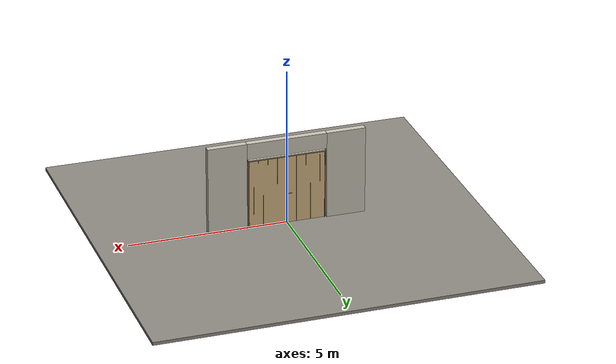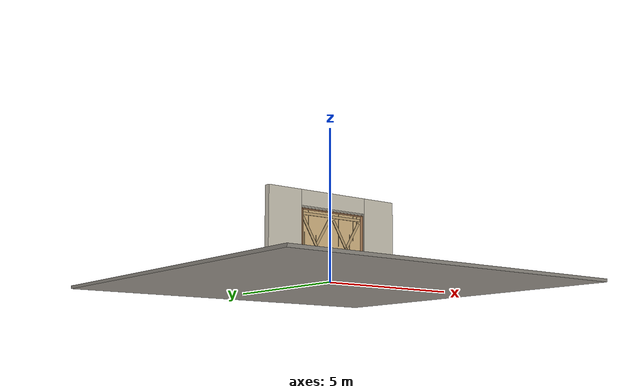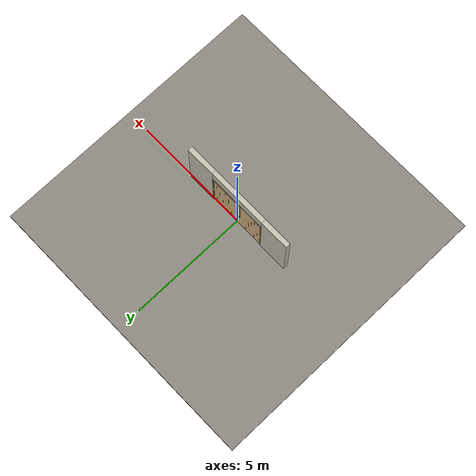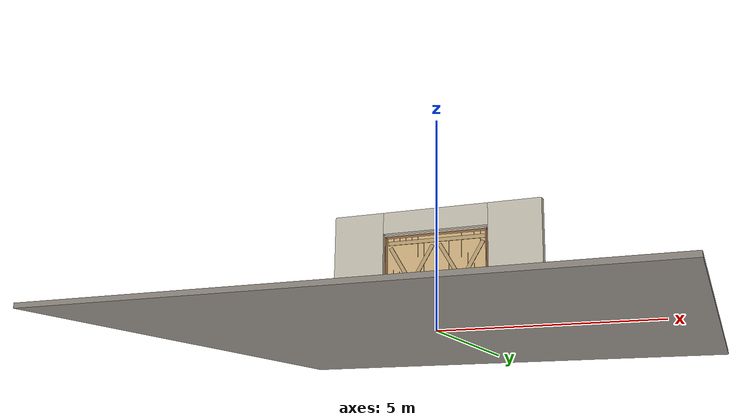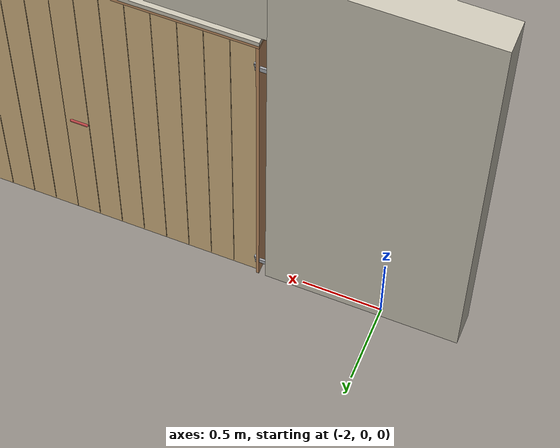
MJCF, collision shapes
<?xml version="1.0" ?>
<mujoco model="db0918_swing_double_full">
  <compiler angle="radian" meshdir="../../hardware" texturedir="../../textures" autolimits="true" inertiafromgeom="false"/>
  <option timestep="0.002" integrator="implicitfast" cone="elliptic" impratio="10" noslip_iterations="3">
    <flag multiccd="enable"/>
  </option>
  <size memory="16M"/>
  <default>
    <geom condim="4" solref="0.005 1" solimp="0.95 0.99 0.001"/>
    <joint solreflimit="0.005 1" solimplimit="0.95 0.99 0.001"/>
    <tendon solreflimit="0.005 1"/>
    <equality solref="0.002 1"/>
  </default>
  <visual>
    <headlight ambient="0.4 0.4 0.4" diffuse="0.7 0.7 0.7" specular="0.2 0.2 0.2"/>
    <quality shadowsize="4096"/>
    <map znear="0.01" zfar="60"/>
  </visual>
  <asset>
    <mesh name="ring_cc5c941a8a" file="ring_cc5c941a8a.obj"/>
    <mesh name="strap_hinge_78d1bbb966" file="strap_hinge_78d1bbb966.obj"/>
    <material name="mat_floor" rgba="0.55 0.53 0.5 1" specular="0.2" shininess="0.15" reflectance="0"/>
    <material name="mat_wall" rgba="0.78 0.76 0.7 1" specular="0.2" shininess="0.1" reflectance="0"/>
    <material name="mat_leaf_a" rgba="0.82 0.7 0.5 1" specular="0.2" shininess="0.45" reflectance="0"/>
    <material name="mat_leaf_a_brace" rgba="0.738 0.63 0.45 1" specular="0.2" shininess="0.2" reflectance="0"/>
    <material name="mat_hinge" rgba="0.65 0.66 0.68 1" specular="0.74" shininess="0.5" reflectance="0.36"/>
    <material name="mat_op_wrought_iron" rgba="0.08 0.08 0.09 1" specular="0.56" shininess="0.25" reflectance="0.24"/>
    <material name="mat_leaf_b" rgba="0.82 0.7 0.5 1" specular="0.2" shininess="0.45" reflectance="0"/>
    <material name="mat_leaf_b_brace" rgba="0.738 0.63 0.45 1" specular="0.2" shininess="0.2" reflectance="0"/>
    <material name="mat_frame" rgba="0.75 0.55 0.38 1" specular="0.2" shininess="0.45" reflectance="0"/>
    <texture name="skybox" type="skybox" builtin="gradient" rgb1="0.6 0.7 0.85" rgb2="0.9 0.92 0.95" width="256" height="256"/>
  </asset>
  <worldbody>
    <light name="sun" pos="1.5 -2.5 4" dir="-0.3 0.5 -0.8" directional="true" diffuse="0.8 0.8 0.8" specular="0.3 0.3 0.3" castshadow="true"/>
    <light name="fill" pos="-1.5 2.5 3" dir="0.3 -0.5 -0.7" directional="true" diffuse="0.35 0.35 0.4" castshadow="false"/>
    <camera name="robot_view" pos="0 -2.941438 1.913863" xyaxes="1 0 0 0 0.26963 0.962964" fovy="52"/>
    <camera name="far_view" pos="0 2.825438 1.913863" xyaxes="-1 0 0 0 -0.26963 0.962964" fovy="52"/>
    <camera name="iso" pos="-2.191412 -2.480088 2.375212" xyaxes="0.741536 -0.670913 0 0.242917 0.268487 0.932151" fovy="46"/>
    <camera name="detail_handle" pos="0.0735 -0.854 1.27" xyaxes="0.97561 0.219512 0 -0.070934 0.315262 0.94635" fovy="38"/>
    <geom name="floor" type="box" size="6 6 0.05" pos="0 0 -0.05" material="mat_floor" group="0" contype="1" conaffinity="1" friction="0.8 0.005 0.0001" density="2400"/>
    <geom name="wall_left" type="box" size="0.61775 0.1 1.4065" pos="-1.88225 -0.058 1.4065" material="mat_wall" group="0" contype="1" conaffinity="1" friction="0.6 0.005 0.0001" density="800"/>
    <geom name="wall_right" type="box" size="0.61775 0.1 1.4065" pos="1.88225 -0.058 1.4065" material="mat_wall" group="0" contype="1" conaffinity="1" friction="0.6 0.005 0.0001" density="800"/>
    <geom name="wall_header" type="box" size="1.2645 0.1 0.255" pos="0 -0.058 2.558" material="mat_wall" group="0" contype="1" conaffinity="1" friction="0.6 0.005 0.0001" density="800"/>
    <geom name="hinge_pintle_0" type="cylinder" size="0.008 0.02" pos="-1.2015 0.029 0.133" material="mat_hinge" group="1" contype="0" conaffinity="0" density="7850"/>
    <geom name="hinge_pintle_1" type="cylinder" size="0.008 0.02" pos="-1.2015 0.029 2.033" material="mat_hinge" group="1" contype="0" conaffinity="0" density="7850"/>
    <geom name="hinge_pintle_0_2" type="cylinder" size="0.008 0.02" pos="1.2015 0.029 0.133" material="mat_hinge" group="1" contype="0" conaffinity="0" density="7850"/>
    <geom name="hinge_pintle_1_2" type="cylinder" size="0.008 0.02" pos="1.2015 0.029 2.033" material="mat_hinge" group="1" contype="0" conaffinity="0" density="7850"/>
    <geom name="jamb_l" type="box" size="0.0095 0.1 1.1065" pos="-1.214 -0.058 1.1065" material="mat_frame" group="0" contype="1" conaffinity="1" friction="0.6 0.005 0.0001" density="300"/>
    <geom name="jamb_r" type="box" size="0.0095 0.1 1.1065" pos="1.214 -0.058 1.1065" material="mat_frame" group="0" contype="1" conaffinity="1" friction="0.6 0.005 0.0001" density="300"/>
    <geom name="jamb_head" type="box" size="1.2235 0.1 0.0095" pos="0 -0.058 2.2225" material="mat_frame" group="0" contype="1" conaffinity="1" friction="0.6 0.005 0.0001" density="300"/>
    <geom name="head_stud" type="box" size="1.2235 0.1 0.015" pos="0 -0.058 2.247" material="mat_wall" group="0" contype="1" conaffinity="1" friction="0.6 0.005 0.0001" density="500"/>
    <geom name="hinge_pintle_0_strap_0" type="box" size="0.028 0.0064 0.016" pos="-1.237 0.029 0.133" material="mat_hinge" group="1" contype="0" conaffinity="0" density="7850"/>
    <geom name="hinge_pintle_0_strap_1" type="box" size="0.028 0.0064 0.016" pos="1.237 0.029 0.133" material="mat_hinge" group="1" contype="0" conaffinity="0" density="7850"/>
    <geom name="hinge_pintle_1_strap_0" type="box" size="0.028 0.0064 0.016" pos="-1.237 0.029 2.033" material="mat_hinge" group="1" contype="0" conaffinity="0" density="7850"/>
    <geom name="hinge_pintle_1_strap_1" type="box" size="0.028 0.0064 0.016" pos="1.237 0.029 2.033" material="mat_hinge" group="1" contype="0" conaffinity="0" density="7850"/>
    <site name="approach_point" pos="0 -1.5 0" quat="1 0 0 0" size="0.05" rgba="0.2 0.9 0.2 0.5" group="4"/>
    <site name="goal_point" pos="0 1.5 0" quat="1 0 0 0" size="0.05" rgba="0.2 0.9 0.2 0.5" group="4"/>
    <site name="door_plane_center" pos="0 0 1.1065" quat="1 0 0 0" size="0.02" rgba="0.2 0.9 0.2 0.5" group="4"/>
    <site name="approach_point_2" pos="0 -1.5 0" quat="1 0 0 0" size="0.05" rgba="0.2 0.9 0.2 0.5" group="4"/>
    <site name="goal_point_2" pos="0 1.5 0" quat="1 0 0 0" size="0.05" rgba="0.2 0.9 0.2 0.5" group="4"/>
    <site name="door_plane_center_2" pos="0 0 1.1065" quat="1 0 0 0" size="0.02" rgba="0.2 0.9 0.2 0.5" group="4"/>
    <site name="approach_point_3" pos="0 -1.5 0" quat="1 0 0 0" size="0.05" rgba="0.2 0.9 0.2 0.5" group="4"/>
    <site name="goal_point_3" pos="0 1.5 0" quat="1 0 0 0" size="0.05" rgba="0.2 0.9 0.2 0.5" group="4"/>
    <site name="door_plane_center_3" pos="0 0 1.1065" quat="1 0 0 0" size="0.02" rgba="0.2 0.9 0.2 0.5" group="4"/>
    <body name="leaf_a" pos="-1.2045 0 0">
      <inertial pos="0.59141 0.001011 1.108012" mass="47.355459" quat="0.500497 0.498643 -0.501331 0.499524" diaginertia="5.965409477 19.799806201 25.744355825"/>
      <joint name="leaf_a_hinge" type="hinge" axis="0 0 1" pos="0.003 0.029 0" limited="true" range="0 1.396263" damping="0.873883" frictionloss="15.165791" armature="0.02"/>
      <geom name="leaf_a_slab" type="box" size="0.6 0.022 1.1" pos="0.603 0 1.109" material="mat_leaf_a" group="0" contype="1" conaffinity="1" friction="0.35 0.005 0.0001" density="1"/>
      <geom name="leaf_a_plank_gap_1" type="box" size="0.002 0.023 1.09" pos="0.153 0 1.109" material="mat_leaf_a_brace" group="1" contype="0" conaffinity="0" density="1"/>
      <geom name="leaf_a_plank_gap_2" type="box" size="0.002 0.023 1.09" pos="0.303 0 1.109" material="mat_leaf_a_brace" group="1" contype="0" conaffinity="0" density="1"/>
      <geom name="leaf_a_plank_gap_3" type="box" size="0.002 0.023 1.09" pos="0.453 0 1.109" material="mat_leaf_a_brace" group="1" contype="0" conaffinity="0" density="1"/>
      <geom name="leaf_a_plank_gap_4" type="box" size="0.002 0.023 1.09" pos="0.603 0 1.109" material="mat_leaf_a_brace" group="1" contype="0" conaffinity="0" density="1"/>
      <geom name="leaf_a_plank_gap_5" type="box" size="0.002 0.023 1.09" pos="0.753 0 1.109" material="mat_leaf_a_brace" group="1" contype="0" conaffinity="0" density="1"/>
      <geom name="leaf_a_plank_gap_6" type="box" size="0.002 0.023 1.09" pos="0.903 0 1.109" material="mat_leaf_a_brace" group="1" contype="0" conaffinity="0" density="1"/>
      <geom name="leaf_a_plank_gap_7" type="box" size="0.002 0.023 1.09" pos="1.053 0 1.109" material="mat_leaf_a_brace" group="1" contype="0" conaffinity="0" density="1"/>
      <geom name="leaf_a_batten_12" type="box" size="0.57 0.01 0.045" pos="0.603 -0.032 0.129" material="mat_leaf_a_brace" group="1" contype="0" conaffinity="0" density="1"/>
      <geom name="leaf_a_batten_208" type="box" size="0.57 0.01 0.045" pos="0.603 -0.032 2.089" material="mat_leaf_a_brace" group="1" contype="0" conaffinity="0" density="1"/>
      <geom name="leaf_a_brace_z" type="box" size="1.016162 0.01 0.045" pos="0.603 -0.032 1.109" quat="0.869217 0 -0.494431 0" material="mat_leaf_a_brace" group="1" contype="0" conaffinity="0" density="1"/>
      <geom name="leaf_a_brace_x" type="box" size="1.016162 0.01 0.045" pos="0.603 -0.032 1.109" quat="0.869217 0 0.494431 0" material="mat_leaf_a_brace" group="1" contype="0" conaffinity="0" density="1"/>
      <geom name="hinge_strap_0" type="mesh" mesh="strap_hinge_78d1bbb966" pos="0.003 0.025 0.159" material="mat_hinge" group="1" contype="0" conaffinity="0" density="7850"/>
      <geom name="hinge_strap_eye_0" type="cylinder" size="0.011 0.012" pos="0.003 0.029 0.159" material="mat_hinge" group="1" contype="0" conaffinity="0" density="7850"/>
      <geom name="hinge_strap_neck_0" type="box" size="0.012 0.006 0.006" pos="0.003 0.027 0.159" material="mat_hinge" group="1" contype="0" conaffinity="0" density="7850"/>
      <geom name="hinge_strap_1" type="mesh" mesh="strap_hinge_78d1bbb966" pos="0.003 0.025 2.059" material="mat_hinge" group="1" contype="0" conaffinity="0" density="7850"/>
      <geom name="hinge_strap_eye_1" type="cylinder" size="0.011 0.012" pos="0.003 0.029 2.059" material="mat_hinge" group="1" contype="0" conaffinity="0" density="7850"/>
      <geom name="hinge_strap_neck_1" type="box" size="0.012 0.006 0.006" pos="0.003 0.027 2.059" material="mat_hinge" group="1" contype="0" conaffinity="0" density="7850"/>
      <geom name="leaf_a_ring_pull_n" type="mesh" mesh="ring_cc5c941a8a" pos="1.098 -0.022 1.05" quat="0.707107 0.707107 0 0" material="mat_op_wrought_iron" group="1" contype="0" conaffinity="0" density="3000"/>
      <geom name="leaf_a_ring_pull_col_n" type="capsule" size="0.008 0.05" pos="1.098 -0.054 0.99" quat="0.707107 0 0.707107 0" material="mat_op_wrought_iron" group="3" contype="1" conaffinity="1" rgba="0.8 0.3 0.3 0.25" friction="0.7 0.01 0.0001" density="3000"/>
      <geom name="leaf_a_ring_pull_p" type="mesh" mesh="ring_cc5c941a8a" pos="1.098 0.022 1.05" quat="-0.707107 0.707107 0 0" material="mat_op_wrought_iron" group="1" contype="0" conaffinity="0" density="3000"/>
      <geom name="leaf_a_ring_pull_col_p" type="capsule" size="0.008 0.05" pos="1.098 0.054 0.99" quat="0.707107 0 0.707107 0" material="mat_op_wrought_iron" group="3" contype="1" conaffinity="1" rgba="0.8 0.3 0.3 0.25" friction="0.7 0.01 0.0001" density="3000"/>
      <site name="leaf_a_ring_pull_grip_n" pos="1.098 -0.054 0.99" quat="1 0 0 0" size="0.012" rgba="0.2 0.9 0.2 0.5" group="4"/>
      <site name="leaf_a_ring_pull_grip_p" pos="1.098 0.054 0.99" quat="1 0 0 0" size="0.012" rgba="0.2 0.9 0.2 0.5" group="4"/>
      <site name="leaf_a_edge_mid" pos="1.203 0 1.1" quat="1 0 0 0" size="0.02" rgba="0.2 0.9 0.2 0.5" group="4"/>
    </body>
    <body name="leaf_b" pos="1.2045 0 0">
      <inertial pos="-0.584222 0.001026 1.109" mass="47.272541" quat="0.499072 0.500926 -0.499072 0.500926" diaginertia="5.86206642 20.038721908 25.883833077"/>
      <joint name="leaf_b_hinge" type="hinge" axis="0 0 -1" pos="-0.003 0.029 0" limited="true" range="0 0.001" damping="0.873883" frictionloss="15.165791" armature="0.02"/>
      <geom name="leaf_b_slab" type="box" size="0.6 0.022 1.1" pos="-0.603 0 1.109" material="mat_leaf_b" group="0" contype="1" conaffinity="1" friction="0.35 0.005 0.0001" density="1"/>
      <geom name="leaf_b_plank_gap_1" type="box" size="0.002 0.023 1.09" pos="-0.153 0 1.109" material="mat_leaf_b_brace" group="1" contype="0" conaffinity="0" density="1"/>
      <geom name="leaf_b_plank_gap_2" type="box" size="0.002 0.023 1.09" pos="-0.303 0 1.109" material="mat_leaf_b_brace" group="1" contype="0" conaffinity="0" density="1"/>
      <geom name="leaf_b_plank_gap_3" type="box" size="0.002 0.023 1.09" pos="-0.453 0 1.109" material="mat_leaf_b_brace" group="1" contype="0" conaffinity="0" density="1"/>
      <geom name="leaf_b_plank_gap_4" type="box" size="0.002 0.023 1.09" pos="-0.603 0 1.109" material="mat_leaf_b_brace" group="1" contype="0" conaffinity="0" density="1"/>
      <geom name="leaf_b_plank_gap_5" type="box" size="0.002 0.023 1.09" pos="-0.753 0 1.109" material="mat_leaf_b_brace" group="1" contype="0" conaffinity="0" density="1"/>
      <geom name="leaf_b_plank_gap_6" type="box" size="0.002 0.023 1.09" pos="-0.903 0 1.109" material="mat_leaf_b_brace" group="1" contype="0" conaffinity="0" density="1"/>
      <geom name="leaf_b_plank_gap_7" type="box" size="0.002 0.023 1.09" pos="-1.053 0 1.109" material="mat_leaf_b_brace" group="1" contype="0" conaffinity="0" density="1"/>
      <geom name="leaf_b_batten_12" type="box" size="0.57 0.01 0.045" pos="-0.603 -0.032 0.129" material="mat_leaf_b_brace" group="1" contype="0" conaffinity="0" density="1"/>
      <geom name="leaf_b_batten_208" type="box" size="0.57 0.01 0.045" pos="-0.603 -0.032 2.089" material="mat_leaf_b_brace" group="1" contype="0" conaffinity="0" density="1"/>
      <geom name="leaf_b_brace_z" type="box" size="1.016162 0.01 0.045" pos="-0.603 -0.032 1.109" quat="0.869217 0 0.494431 0" material="mat_leaf_b_brace" group="1" contype="0" conaffinity="0" density="1"/>
      <geom name="leaf_b_brace_x" type="box" size="1.016162 0.01 0.045" pos="-0.603 -0.032 1.109" quat="0.869217 0 -0.494431 0" material="mat_leaf_b_brace" group="1" contype="0" conaffinity="0" density="1"/>
      <geom name="hinge_strap_0_2" type="mesh" mesh="strap_hinge_78d1bbb966" pos="-0.003 0.025 0.159" quat="0 0 0 1" material="mat_hinge" group="1" contype="0" conaffinity="0" density="7850"/>
      <geom name="hinge_strap_eye_0_2" type="cylinder" size="0.011 0.012" pos="-0.003 0.029 0.159" material="mat_hinge" group="1" contype="0" conaffinity="0" density="7850"/>
      <geom name="hinge_strap_neck_0_2" type="box" size="0.012 0.006 0.006" pos="-0.003 0.027 0.159" material="mat_hinge" group="1" contype="0" conaffinity="0" density="7850"/>
      <geom name="hinge_strap_1_2" type="mesh" mesh="strap_hinge_78d1bbb966" pos="-0.003 0.025 2.059" quat="0 0 0 1" material="mat_hinge" group="1" contype="0" conaffinity="0" density="7850"/>
      <geom name="hinge_strap_eye_1_2" type="cylinder" size="0.011 0.012" pos="-0.003 0.029 2.059" material="mat_hinge" group="1" contype="0" conaffinity="0" density="7850"/>
      <geom name="hinge_strap_neck_1_2" type="box" size="0.012 0.006 0.006" pos="-0.003 0.027 2.059" material="mat_hinge" group="1" contype="0" conaffinity="0" density="7850"/>
      <site name="leaf_b_edge_mid" pos="-1.203 0 1.1" quat="1 0 0 0" size="0.02" rgba="0.2 0.9 0.2 0.5" group="4"/>
    </body>
  </worldbody>
  <sensor>
    <jointpos name="leaf_a_hinge_pos" joint="leaf_a_hinge"/>
    <jointvel name="leaf_a_hinge_vel" joint="leaf_a_hinge"/>
    <jointpos name="leaf_b_hinge_pos" joint="leaf_b_hinge"/>
    <jointvel name="leaf_b_hinge_vel" joint="leaf_b_hinge"/>
  </sensor>
</mujoco>
